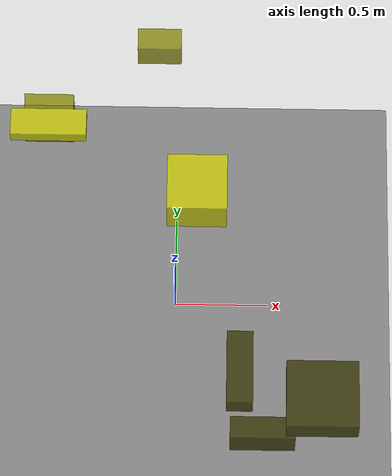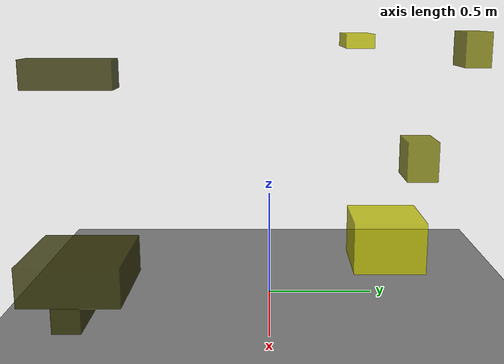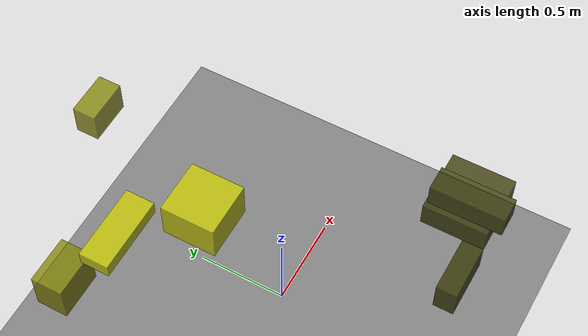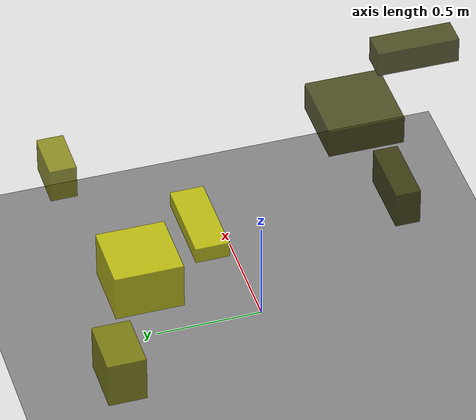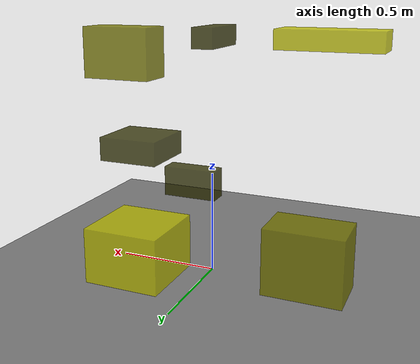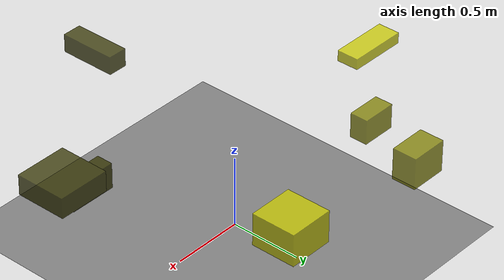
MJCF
<?xml version="1.0"?>
<mujoco model="obstacle_scene">
  <compiler angle="radian" coordinate="local"/>
  <option timestep="0.001" gravity="0 0 -9.81"/>

  <asset>
    <material name="obstacle_mat" rgba="0.8 0.8 0.0 0.8"/>
    <material name="ground_mat" rgba="0.5 0.5 0.5 1"/>
  </asset>

  <worldbody>
    <!-- Ground plane -->
    <geom name="ground" type="plane" size="3 3 0.1" material="ground_mat"/>

    <!-- Obstacles -->
    <body name="obstacle_0" pos="0.477288 -0.814443 0.175374">
      <geom name="obs_0" type="box" size="0.172319 0.059822 0.093750" rgba="0.2 0.2 0.0 0.8"/>
    </body>
    <body name="obstacle_1" pos="-0.698177 0.862441 0.530595">
      <geom name="obs_1" type="box" size="0.132466 0.087065 0.113021" rgba="0.5 0.5 0.0 0.8"/>
    </body>
    <body name="obstacle_2" pos="0.108731 0.544348 0.309131">
      <geom name="obs_2" type="box" size="0.163368 0.162056 0.117395" rgba="0.8 0.8 0.0 0.8"/>
    </body>
    <body name="obstacle_3" pos="0.340704 -0.830849 1.096382">
      <geom name="obs_3" type="box" size="0.065746 0.191891 0.062033" rgba="0.2 0.2 0.0 0.8"/>
    </body>
    <body name="obstacle_4" pos="-0.094920 0.962003 1.179353">
      <geom name="obs_4" type="box" size="0.113244 0.059591 0.081923" rgba="0.5 0.5 0.0 0.8"/>
    </body>
    <body name="obstacle_5" pos="-0.660231 0.481216 1.201696">
      <geom name="obs_5" type="box" size="0.195088 0.074385 0.036870" rgba="0.8 0.8 0.0 0.8"/>
    </body>
    <body name="obstacle_6" pos="0.785726 -0.701719 0.407208">
      <geom name="obs_6" type="box" size="0.189360 0.184971 0.074202" rgba="0.2 0.2 0.0 0.8"/>
    </body>
  </worldbody>
</mujoco>
